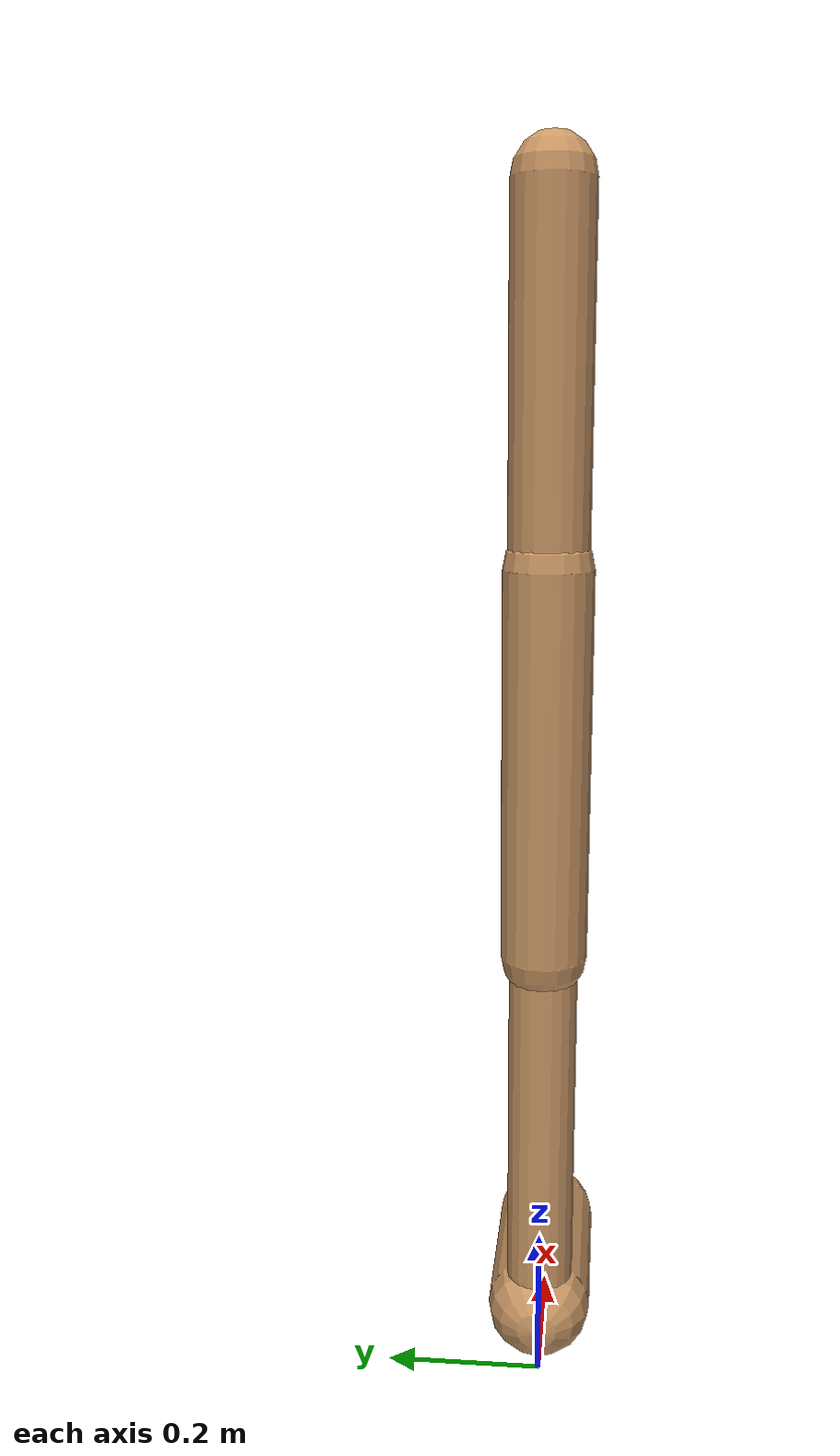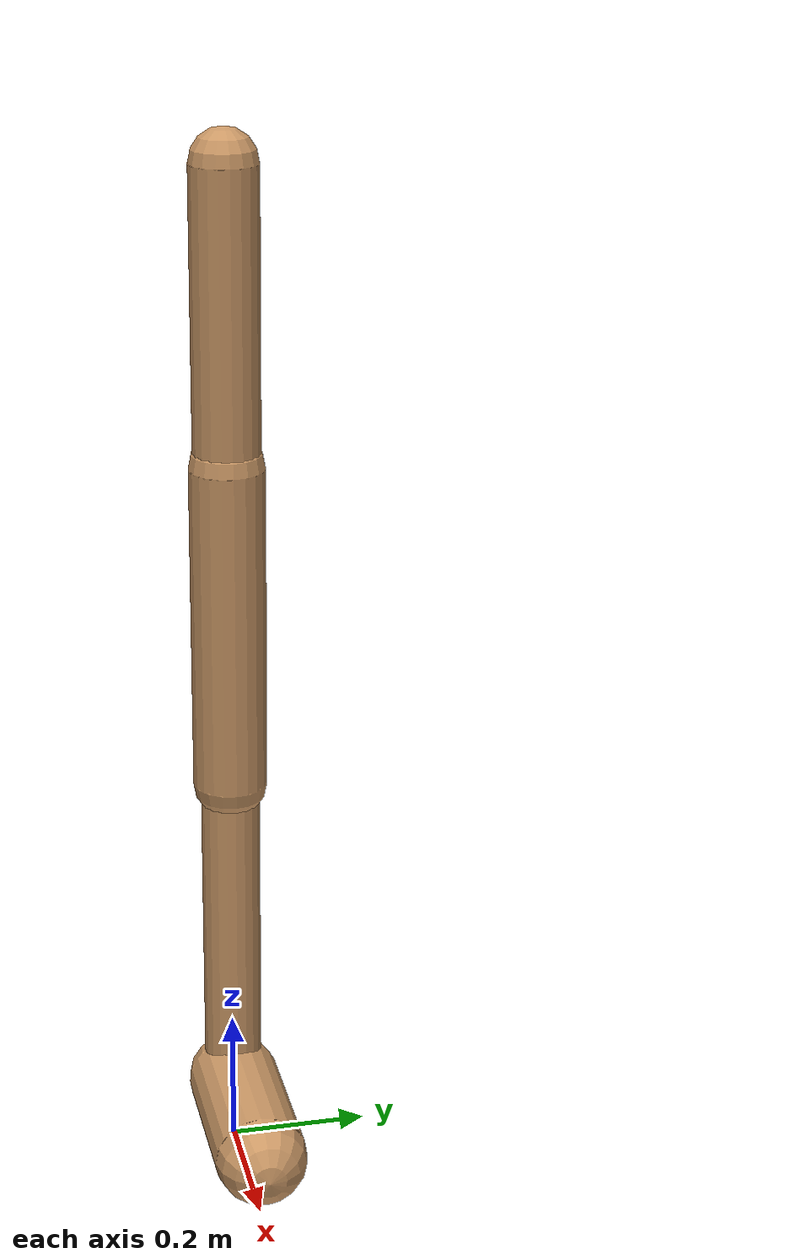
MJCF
<mujoco model="walker2d">
  <compiler angle="degree" coordinate="global" inertiafromgeom="true" />
  <default>
    <joint armature="0.01" damping=".1" limited="true" />
    <geom conaffinity="0" condim="3" contype="1" density="1000" friction="0.8 .1 .1" rgba="0.8 0.6 .4 1" />
  </default>
  <option integrator="RK4" timestep="0.002" />
  <worldbody>

    <body name="torso" pos="0 0 0.02328232774356212">
      <joint armature="0" axis="1 0 0" damping="0" limited="false" name="ignorex" pos="0 0 0" stiffness="0" type="slide" />
      <joint armature="0" axis="0 0 1" damping="0" limited="false" name="ignorez" pos="0 0 0" ref="1.25" stiffness="0" type="slide" />
      <joint armature="0" axis="0 1 0" damping="0" limited="false" name="ignorey" pos="0 0 0" stiffness="0" type="hinge" />
      <geom fromto="0 0 1.45 0 0 1.05" name="torso_geom" size="0.04634320031945236" type="capsule" />
      <body name="thigh">
        <joint axis="0 -1 0" name="thigh_joint" pos="0 0 1.05" range="-150 0" type="hinge" />
        <geom fromto="0.0 0.0 1.05 0.0 0.0 0.5889715289635759" name="thigh_geom" size="0.05208549588967803" type="capsule" />
        <body name="leg" pos="0.0 0.0 -0.011028471036424126">
          <joint axis="0 -1 0" name="leg_joint" pos="0 0 0.6" range="-150 0" type="hinge" />
          <geom fromto="0.0 0.0 0.6 0.0 0.0 0.08774614329286205" name="leg_geom" size="0.04166839671174242" type="capsule" />
          <body name="foot" pos="0.0 0.0 -0.012253856707137953">
            <joint axis="0 -1 0" name="foot_joint" pos="0 0 0.1" range="-45 45" type="hinge" />
            <geom fromto="-0.0 0.0 0.1 0.2133407969766711 0.0 0.1" name="foot_geom" size="0.06551677212449103" type="capsule" />
          </body>
        </body>
      </body>

      <body name="thigh_left">
        <joint axis="0 -1 0" name="thigh_left_joint" pos="0 0 1.05" range="-150 0" type="hinge" />
        <geom fromto="0.0 0.0 1.05 0.0 0.0 0.5889715289635759" name="thigh_left_geom" rgba=".7 .3 .6 1" size="0.05208549588967803" type="capsule" />
        <body name="leg_left" pos="0.0 0.0 -0.011028471036424126">
          <joint axis="0 -1 0" name="leg_left_joint" pos="0 0 0.6" range="-150 0" type="hinge" />
          <geom fromto="0.0 0.0 0.6 0.0 0.0 0.08774614329286205" name="leg_left_geom" rgba=".7 .3 .6 1" size="0.04166839671174242" type="capsule" />
          <body name="foot_left" pos="0.0 0.0 -0.012253856707137953">
            <joint axis="0 -1 0" name="foot_left_joint" pos="0 0 0.1" range="-45 45" type="hinge" />
            <geom fromto="-0.0 0.0 0.1 0.2133407969766711 0.0 0.1" name="foot_left_geom" rgba=".7 .3 .6 1" size="0.06551677212449103" type="capsule" />
          </body>
        </body>
      </body>
    </body>
  </worldbody>
  <actuator>

    <motor ctrllimited="true" ctrlrange="-1.0 1.0" gear="100" joint="thigh_joint" />
    <motor ctrllimited="true" ctrlrange="-1.0 1.0" gear="100" joint="leg_joint" />
    <motor ctrllimited="true" ctrlrange="-1.0 1.0" gear="100" joint="foot_joint" />
    <motor ctrllimited="true" ctrlrange="-1.0 1.0" gear="100" joint="thigh_left_joint" />
    <motor ctrllimited="true" ctrlrange="-1.0 1.0" gear="100" joint="leg_left_joint" />
    <motor ctrllimited="true" ctrlrange="-1.0 1.0" gear="100" joint="foot_left_joint" />

  </actuator>
</mujoco>
